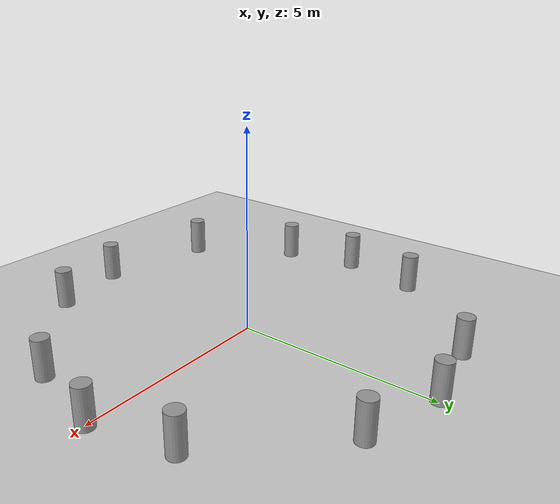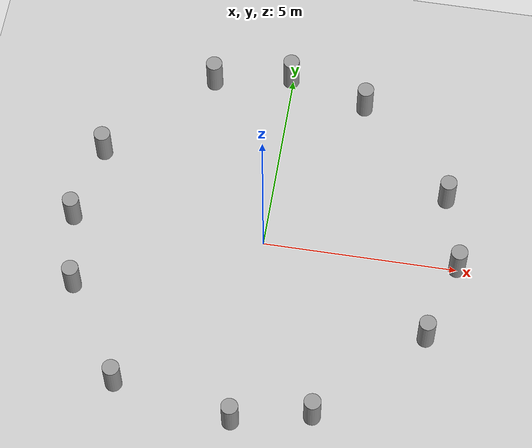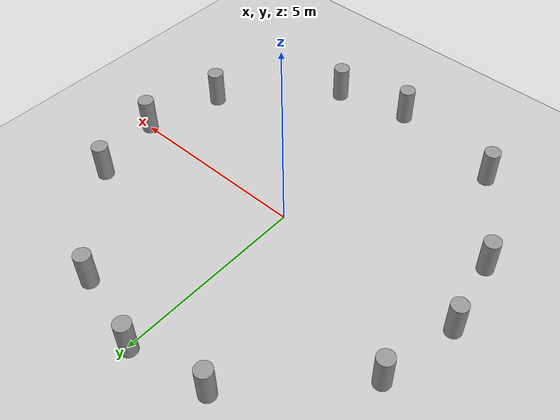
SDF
<sdf version="1.7">
 <world name="default">
  <light name="sun" type="directional">
   <pose>0 0 10 0 -0 0</pose>
   <diffuse>0.8 0.8 0.8 1</diffuse>
   <specular>0.2 0.2 0.2 1</specular>
   <attenuation>
    <range>1000</range>
    <constant>0.9</constant>
    <linear>0.01</linear>
    <quadratic>0.001</quadratic>
   </attenuation>
   <direction>-0.5 0.1 -0.9</direction>
   <spot><inner_angle>0</inner_angle><outer_angle>0</outer_angle><falloff>0</falloff></spot>
  </light>
  <model name="ground_plane">
   <static>1</static>
   <link name="link">
    <collision name="collision">
     <geometry><plane><normal>0 0 1</normal><size>100 100</size></plane></geometry>
     <surface>
      <contact><collide_bitmask>65535</collide_bitmask></contact>
      <friction><ode><mu>100</mu><mu2>50</mu2></ode></friction>
     </surface>
    </collision>
    <visual name="visual">
     <cast_shadows>0</cast_shadows>
     <geometry><plane><normal>0 0 1</normal><size>100 100</size></plane></geometry>
     <material>
      <script><uri>file://media/materials/scripts/gazebo.material</uri><name>Gazebo/Grey</name></script>
     </material>
    </visual>
   </link>
  </model>
  <gravity>0 0 -9.8</gravity>
  <magnetic_field>6e-06 2.3e-05 -4.2e-05</magnetic_field>
  <atmosphere type="adiabatic"/>
  <physics type="ode">
   <max_step_size>0.001</max_step_size>
   <real_time_factor>1</real_time_factor>
   <real_time_update_rate>1000</real_time_update_rate>
  </physics>
  <scene><ambient>0.4 0.4 0.4 1</ambient><background>0.7 0.7 0.7 1</background><shadows>1</shadows></scene>
  <spherical_coordinates>
   <surface_model>EARTH_WGS84</surface_model>
   <latitude_deg>0</latitude_deg>
   <longitude_deg>0</longitude_deg>
   <elevation>0</elevation>
   <heading_deg>0</heading_deg>
  </spherical_coordinates>
  <model name="unit_cylinder">
   <pose>-0.062174 5.00511 0.499992 0 -0 -0.848289</pose>
   <link name="link">
    <inertial>
     <mass>1</mass>
     <inertia><ixx>0.145833</ixx><ixy>0</ixy><ixz>0</ixz><iyy>0.145833</iyy><iyz>0</iyz><izz>0.125</izz></inertia>
    </inertial>
    <collision name="collision">
     <geometry><cylinder><radius>0.213297</radius><length>1</length></cylinder></geometry>
    </collision>
    <visual name="visual">
     <geometry><cylinder><radius>0.213297</radius><length>1</length></cylinder></geometry>
     <material>
      <script><name>Gazebo/Grey</name><uri>file://media/materials/scripts/gazebo.material</uri></script>
     </material>
    </visual>
   </link>
  </model>
  <model name="unit_cylinder_clone">
   <pose>4.99885 0.025025 0.499991 0 -0 -0.848289</pose>
   <link name="link">
    <inertial>
     <mass>1</mass>
     <inertia><ixx>0.145833</ixx><ixy>0</ixy><ixz>0</ixz><iyy>0.145833</iyy><iyz>0</iyz><izz>0.125</izz></inertia>
    </inertial>
    <collision name="collision">
     <geometry><cylinder><radius>0.213297</radius><length>1</length></cylinder></geometry>
    </collision>
    <visual name="visual">
     <geometry><cylinder><radius>0.213297</radius><length>1</length></cylinder></geometry>
     <material>
      <script><name>Gazebo/Grey</name><uri>file://media/materials/scripts/gazebo.material</uri></script>
     </material>
    </visual>
   </link>
  </model>
  <model name="unit_cylinder_clone_clone">
   <pose>-0.010366 -5.01023 0.499991 0 -0 -0.848289</pose>
   <link name="link">
    <inertial>
     <mass>1</mass>
     <inertia><ixx>0.145833</ixx><ixy>0</ixy><ixz>0</ixz><iyy>0.145833</iyy><iyz>0</iyz><izz>0.125</izz></inertia>
    </inertial>
    <collision name="collision">
     <geometry><cylinder><radius>0.213297</radius><length>1</length></cylinder></geometry>
    </collision>
    <visual name="visual">
     <geometry><cylinder><radius>0.213297</radius><length>1</length></cylinder></geometry>
     <material>
      <script><name>Gazebo/Grey</name><uri>file://media/materials/scripts/gazebo.material</uri></script>
     </material>
    </visual>
   </link>
  </model>
  <model name="unit_cylinder_clone_clone_0">
   <pose>4.44682 -2.0473 0.499999 0 0 -0.848289</pose>
   <link name="link">
    <inertial>
     <mass>1</mass>
     <inertia><ixx>0.145833</ixx><ixy>0</ixy><ixz>0</ixz><iyy>0.145833</iyy><iyz>0</iyz><izz>0.125</izz></inertia>
    </inertial>
    <collision name="collision">
     <geometry><cylinder><radius>0.213297</radius><length>1</length></cylinder></geometry>
    </collision>
    <visual name="visual">
     <geometry><cylinder><radius>0.213297</radius><length>1</length></cylinder></geometry>
     <material>
      <script><name>Gazebo/Grey</name><uri>file://media/materials/scripts/gazebo.material</uri></script>
     </material>
    </visual>
   </link>
  </model>
  <model name="unit_cylinder_clone_clone_1">
   <pose>1.95031 -4.57152 0.499991 0 -0 -0.848289</pose>
   <link name="link">
    <inertial>
     <mass>1</mass>
     <inertia><ixx>0.145833</ixx><ixy>0</ixy><ixz>0</ixz><iyy>0.145833</iyy><iyz>0</iyz><izz>0.125</izz></inertia>
    </inertial>
    <collision name="collision">
     <geometry><cylinder><radius>0.213297</radius><length>1</length></cylinder></geometry>
    </collision>
    <visual name="visual">
     <geometry><cylinder><radius>0.213297</radius><length>1</length></cylinder></geometry>
     <material>
      <script><name>Gazebo/Grey</name><uri>file://media/materials/scripts/gazebo.material</uri></script>
     </material>
    </visual>
   </link>
  </model>
  <model name="unit_cylinder_clone_clone_2">
   <pose>2.01161 4.44279 0.499999 0 0 -0.848289</pose>
   <link name="link">
    <inertial>
     <mass>1</mass>
     <inertia><ixx>0.145833</ixx><ixy>0</ixy><ixz>0</ixz><iyy>0.145833</iyy><iyz>0</iyz><izz>0.125</izz></inertia>
    </inertial>
    <collision name="collision">
     <geometry><cylinder><radius>0.213297</radius><length>1</length></cylinder></geometry>
    </collision>
    <visual name="visual">
     <geometry><cylinder><radius>0.213297</radius><length>1</length></cylinder></geometry>
     <material>
      <script><name>Gazebo/Grey</name><uri>file://media/materials/scripts/gazebo.material</uri></script>
     </material>
    </visual>
   </link>
  </model>
  <model name="unit_cylinder_clone_clone_3">
   <pose>4.49963 1.98354 0.499991 0 -0 -0.848289</pose>
   <link name="link">
    <inertial>
     <mass>1</mass>
     <inertia><ixx>0.145833</ixx><ixy>0</ixy><ixz>0</ixz><iyy>0.145833</iyy><iyz>0</iyz><izz>0.125</izz></inertia>
    </inertial>
    <collision name="collision">
     <geometry><cylinder><radius>0.213297</radius><length>1</length></cylinder></geometry>
    </collision>
    <visual name="visual">
     <geometry><cylinder><radius>0.213297</radius><length>1</length></cylinder></geometry>
     <material>
      <script><name>Gazebo/Grey</name><uri>file://media/materials/scripts/gazebo.material</uri></script>
     </material>
    </visual>
   </link>
  </model>
  <model name="unit_cylinder_clone_clone_4">
   <pose>-4.99154 -0.025046 0.499999 0 0 -0.848289</pose>
   <link name="link">
    <inertial>
     <mass>1</mass>
     <inertia><ixx>0.145833</ixx><ixy>0</ixy><ixz>0</ixz><iyy>0.145833</iyy><iyz>0</iyz><izz>0.125</izz></inertia>
    </inertial>
    <collision name="collision">
     <geometry><cylinder><radius>0.213297</radius><length>1</length></cylinder></geometry>
    </collision>
    <visual name="visual">
     <geometry><cylinder><radius>0.213297</radius><length>1</length></cylinder></geometry>
     <material>
      <script><name>Gazebo/Grey</name><uri>file://media/materials/scripts/gazebo.material</uri></script>
     </material>
    </visual>
   </link>
  </model>
  <model name="unit_cylinder_clone_clone_5">
   <pose>-4.59129 2.01967 0.499991 0 -0 -0.848289</pose>
   <link name="link">
    <inertial>
     <mass>1</mass>
     <inertia><ixx>0.145833</ixx><ixy>0</ixy><ixz>0</ixz><iyy>0.145833</iyy><iyz>0</iyz><izz>0.125</izz></inertia>
    </inertial>
    <collision name="collision">
     <geometry><cylinder><radius>0.213297</radius><length>1</length></cylinder></geometry>
    </collision>
    <visual name="visual">
     <geometry><cylinder><radius>0.213297</radius><length>1</length></cylinder></geometry>
     <material>
      <script><name>Gazebo/Grey</name><uri>file://media/materials/scripts/gazebo.material</uri></script>
     </material>
    </visual>
   </link>
  </model>
  <model name="unit_cylinder_clone_clone_6">
   <pose>-2.08335 4.62142 0.499999 0 0 -0.848289</pose>
   <link name="link">
    <inertial>
     <mass>1</mass>
     <inertia><ixx>0.145833</ixx><ixy>0</ixy><ixz>0</ixz><iyy>0.145833</iyy><iyz>0</iyz><izz>0.125</izz></inertia>
    </inertial>
    <collision name="collision">
     <geometry><cylinder><radius>0.213297</radius><length>1</length></cylinder></geometry>
    </collision>
    <visual name="visual">
     <geometry><cylinder><radius>0.213297</radius><length>1</length></cylinder></geometry>
     <material>
      <script><name>Gazebo/Grey</name><uri>file://media/materials/scripts/gazebo.material</uri></script>
     </material>
    </visual>
   </link>
  </model>
  <model name="unit_cylinder_clone_clone_7">
   <pose>-4.59232 -1.95234 0.499991 0 -0 -0.848289</pose>
   <link name="link">
    <inertial>
     <mass>1</mass>
     <inertia><ixx>0.145833</ixx><ixy>0</ixy><ixz>0</ixz><iyy>0.145833</iyy><iyz>0</iyz><izz>0.125</izz></inertia>
    </inertial>
    <collision name="collision">
     <geometry><cylinder><radius>0.213297</radius><length>1</length></cylinder></geometry>
    </collision>
    <visual name="visual">
     <geometry><cylinder><radius>0.213297</radius><length>1</length></cylinder></geometry>
     <material>
      <script><name>Gazebo/Grey</name><uri>file://media/materials/scripts/gazebo.material</uri></script>
     </material>
    </visual>
   </link>
  </model>
  <model name="unit_cylinder_clone_clone_8">
   <pose>-3.04033 -4.45831 0.499999 0 0 -0.848289</pose>
   <link name="link">
    <inertial>
     <mass>1</mass>
     <inertia><ixx>0.145833</ixx><ixy>0</ixy><ixz>0</ixz><iyy>0.145833</iyy><iyz>0</iyz><izz>0.125</izz></inertia>
    </inertial>
    <collision name="collision">
     <geometry><cylinder><radius>0.213297</radius><length>1</length></cylinder></geometry>
    </collision>
    <visual name="visual">
     <geometry><cylinder><radius>0.213297</radius><length>1</length></cylinder></geometry>
     <material>
      <script><name>Gazebo/Grey</name><uri>file://media/materials/scripts/gazebo.material</uri></script>
     </material>
    </visual>
   </link>
  </model>
 </world>
</sdf>
